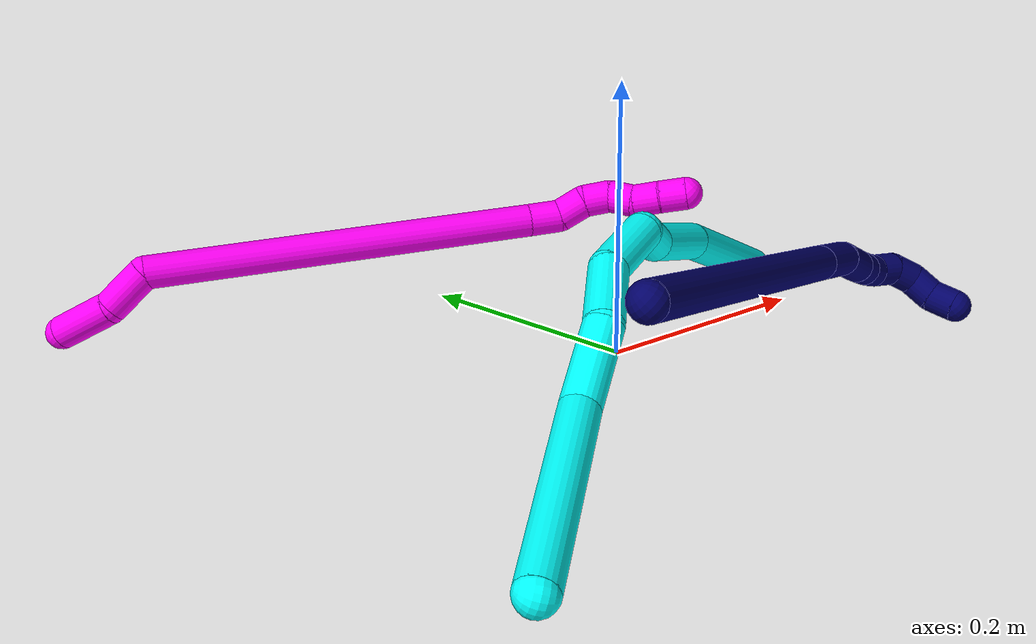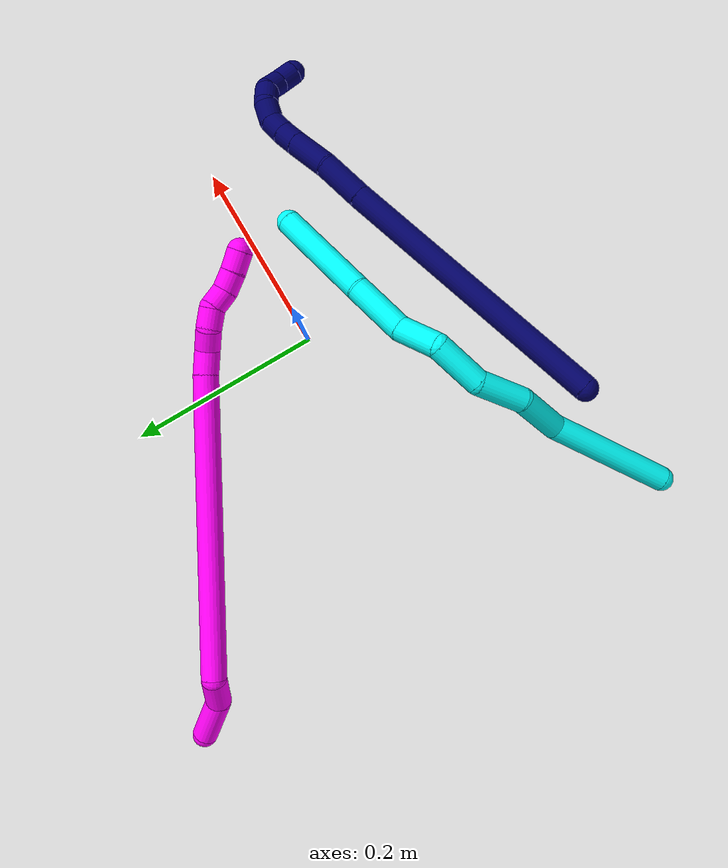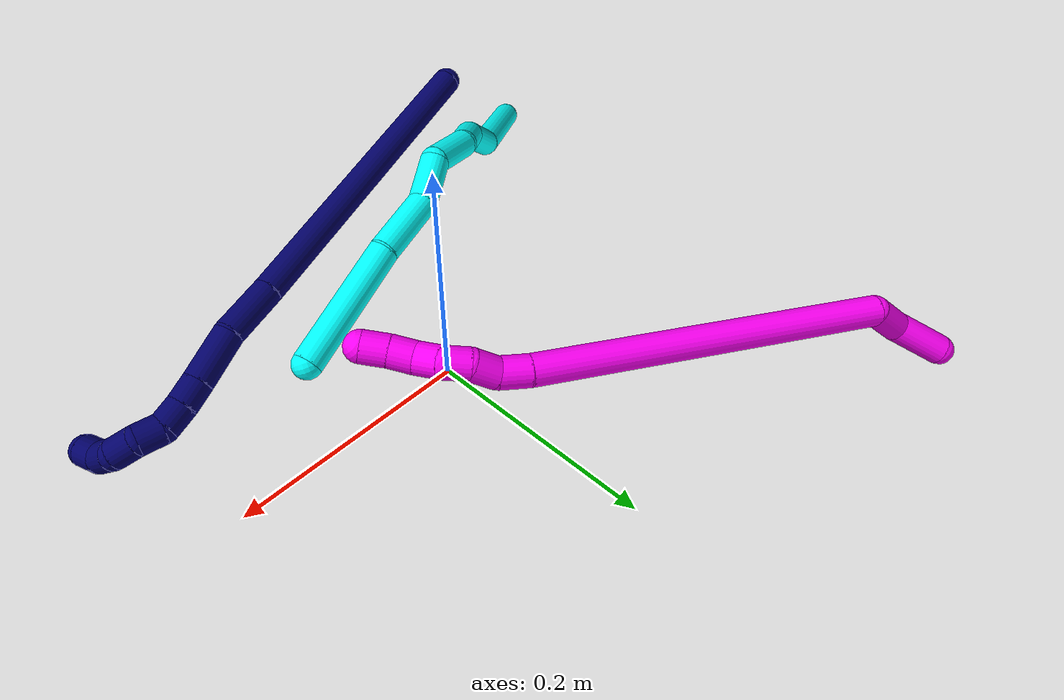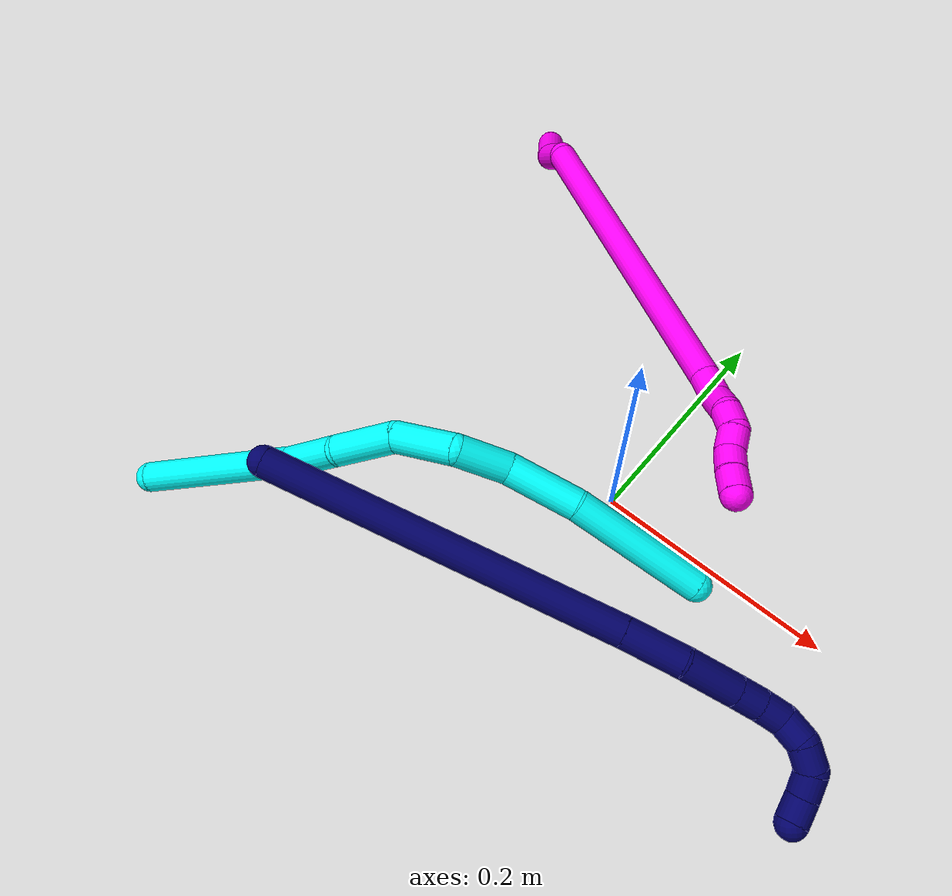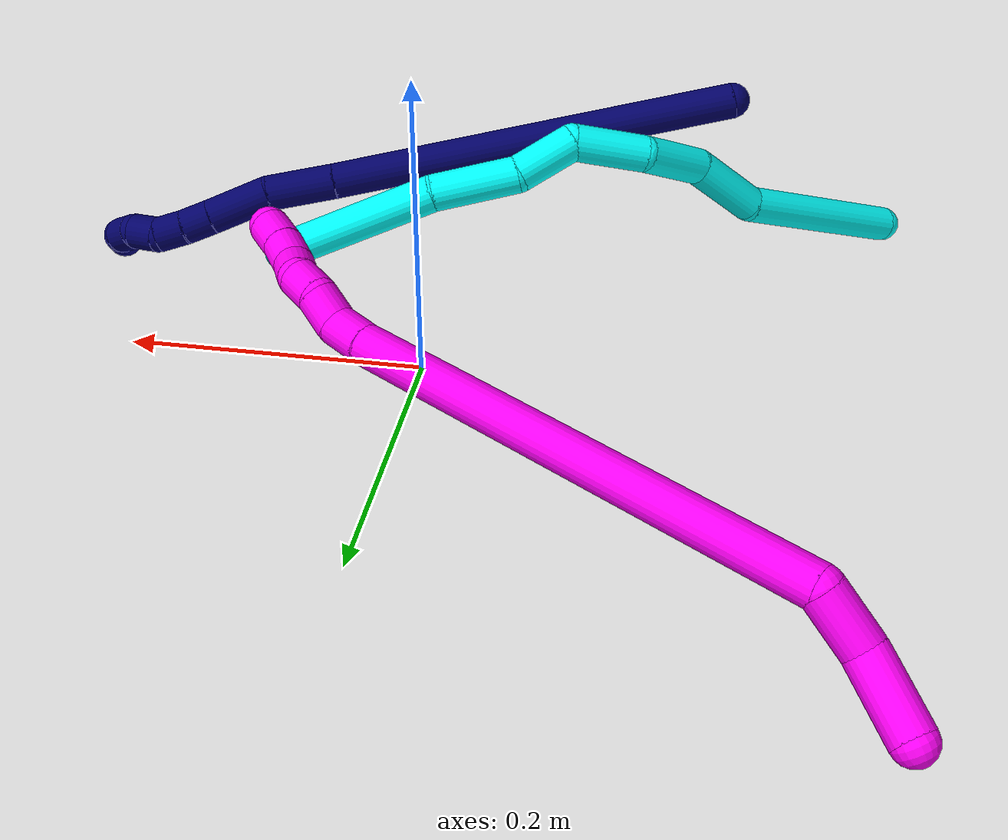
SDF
<sdf version="1.7">
 <world name="default">
  <model name="3">
   <static>0</static>
   <link name="3">
    <collision name="collision-cylinder-e_1_1_4">
     <pose>0.064072 0.015549 0.010611 -0.971942 1.28504 -0.752996</pose>
     <geometry><cylinder><radius>0.0125</radius><length>0.13356</length></cylinder></geometry>
     <surface>
      <friction><ode><mu>1.16</mu><mu2>1.16</mu2><slip1>0</slip1><slip2>0</slip2></ode></friction>
      <contact><ode><kp>1e+06</kp><kd>1</kd><max_vel>0</max_vel><min_depth>0.001</min_depth></ode></contact>
     </surface>
    </collision>
    <visual name="visual-cylinder-e_1_1_4">
     <pose>0.064072 0.015549 0.010611 -0.971942 1.28504 -0.752996</pose>
     <geometry><cylinder><radius>0.0125</radius><length>0.13356</length></cylinder></geometry>
     <material><ambient>0.003922 1 0.996078 1</ambient></material>
    </visual>
    <collision name="collision-cylinder-e_2_4_5">
     <pose>0.150495 0.046999 0.024985 -1.33848 0.939498 -0.7637</pose>
     <geometry><cylinder><radius>0.0125</radius><length>0.055376</length></cylinder></geometry>
     <surface>
      <friction><ode><mu>1.16</mu><mu2>1.16</mu2><slip1>0</slip1><slip2>0</slip2></ode></friction>
      <contact><ode><kp>1e+06</kp><kd>1</kd><max_vel>0</max_vel><min_depth>0.001</min_depth></ode></contact>
     </surface>
    </collision>
    <visual name="visual-cylinder-e_2_4_5">
     <pose>0.150495 0.046999 0.024985 -1.33848 0.939498 -0.7637</pose>
     <geometry><cylinder><radius>0.0125</radius><length>0.055376</length></cylinder></geometry>
     <material><ambient>0.003922 1 0.996078 1</ambient></material>
    </visual>
    <collision name="collision-cylinder-e_3_5_6">
     <pose>0.197225 0.069926 0.030225 -1.36341 1.28442 -1.09108</pose>
     <geometry><cylinder><radius>0.0125</radius><length>0.050827</length></cylinder></geometry>
     <surface>
      <friction><ode><mu>1.16</mu><mu2>1.16</mu2><slip1>0</slip1><slip2>0</slip2></ode></friction>
      <contact><ode><kp>1e+06</kp><kd>1</kd><max_vel>0</max_vel><min_depth>0.001</min_depth></ode></contact>
     </surface>
    </collision>
    <visual name="visual-cylinder-e_3_5_6">
     <pose>0.197225 0.069926 0.030225 -1.36341 1.28442 -1.09108</pose>
     <geometry><cylinder><radius>0.0125</radius><length>0.050827</length></cylinder></geometry>
     <material><ambient>0.003922 1 0.996078 1</ambient></material>
    </visual>
    <collision name="collision-cylinder-e_4_6_7">
     <pose>0.243614 0.082879 0.043072 -0.480654 1.04332 -0.279869</pose>
     <geometry><cylinder><radius>0.0125</radius><length>0.050943</length></cylinder></geometry>
     <surface>
      <friction><ode><mu>1.16</mu><mu2>1.16</mu2><slip1>0</slip1><slip2>0</slip2></ode></friction>
      <contact><ode><kp>1e+06</kp><kd>1</kd><max_vel>0</max_vel><min_depth>0.001</min_depth></ode></contact>
     </surface>
    </collision>
    <visual name="visual-cylinder-e_4_6_7">
     <pose>0.243614 0.082879 0.043072 -0.480654 1.04332 -0.279869</pose>
     <geometry><cylinder><radius>0.0125</radius><length>0.050943</length></cylinder></geometry>
     <material><ambient>0.003922 1 0.996078 1</ambient></material>
    </visual>
    <collision name="collision-cylinder-e_5_7_8">
     <pose>0.282528 0.079729 0.063444 0.789468 0.923239 0.408704</pose>
     <geometry><cylinder><radius>0.0125</radius><length>0.042391</length></cylinder></geometry>
     <surface>
      <friction><ode><mu>1.16</mu><mu2>1.16</mu2><slip1>0</slip1><slip2>0</slip2></ode></friction>
      <contact><ode><kp>1e+06</kp><kd>1</kd><max_vel>0</max_vel><min_depth>0.001</min_depth></ode></contact>
     </surface>
    </collision>
    <visual name="visual-cylinder-e_5_7_8">
     <pose>0.282528 0.079729 0.063444 0.789468 0.923239 0.408704</pose>
     <geometry><cylinder><radius>0.0125</radius><length>0.042391</length></cylinder></geometry>
     <material><ambient>0.003922 1 0.996078 1</ambient></material>
    </visual>
    <collision name="collision-cylinder-e_6_8_9">
     <pose>0.321437 0.066251 0.090669 0.23699 0.865226 0.109843</pose>
     <geometry><cylinder><radius>0.0125</radius><length>0.057811</length></cylinder></geometry>
     <surface>
      <friction><ode><mu>1.16</mu><mu2>1.16</mu2><slip1>0</slip1><slip2>0</slip2></ode></friction>
      <contact><ode><kp>1e+06</kp><kd>1</kd><max_vel>0</max_vel><min_depth>0.001</min_depth></ode></contact>
     </surface>
    </collision>
    <visual name="visual-cylinder-e_6_8_9">
     <pose>0.321437 0.066251 0.090669 0.23699 0.865226 0.109843</pose>
     <geometry><cylinder><radius>0.0125</radius><length>0.057811</length></cylinder></geometry>
     <material><ambient>0.003922 1 0.996078 1</ambient></material>
    </visual>
    <collision name="collision-cylinder-e_7_9_2">
     <pose>0.380244 0.044984 0.145445 0.432295 0.740587 0.17007</pose>
     <geometry><cylinder><radius>0.0125</radius><length>0.109091</length></cylinder></geometry>
     <surface>
      <friction><ode><mu>1.16</mu><mu2>1.16</mu2><slip1>0</slip1><slip2>0</slip2></ode></friction>
      <contact><ode><kp>1e+06</kp><kd>1</kd><max_vel>0</max_vel><min_depth>0.001</min_depth></ode></contact>
     </surface>
    </collision>
    <visual name="visual-cylinder-e_7_9_2">
     <pose>0.380244 0.044984 0.145445 0.432295 0.740587 0.17007</pose>
     <geometry><cylinder><radius>0.0125</radius><length>0.109091</length></cylinder></geometry>
     <material><ambient>0.003922 1 0.996078 1</ambient></material>
    </visual>
    <collision name="collision-sphere-2">
     <pose>0.417047 0.028117 0.182 0 -0 0</pose>
     <geometry><sphere><radius>0.0125</radius></sphere></geometry>
     <surface>
      <friction><ode><mu>1.16</mu><mu2>1.16</mu2><slip1>0</slip1><slip2>0</slip2></ode></friction>
      <contact><ode><kp>1e+06</kp><kd>1</kd><max_vel>0</max_vel><min_depth>0.001</min_depth></ode></contact>
     </surface>
    </collision>
    <visual name="visual-sphere-2">
     <pose>0.417047 0.028117 0.182 0 -0 0</pose>
     <geometry><sphere><radius>0.0125</radius></sphere></geometry>
     <material><ambient>0.003922 1 0.996078 1</ambient></material>
    </visual>
    <collision name="collision-sphere-9">
     <pose>0.343441 0.06185 0.10889 0 -0 0</pose>
     <geometry><sphere><radius>0.0125</radius></sphere></geometry>
     <surface>
      <friction><ode><mu>1.16</mu><mu2>1.16</mu2><slip1>0</slip1><slip2>0</slip2></ode></friction>
      <contact><ode><kp>1e+06</kp><kd>1</kd><max_vel>0</max_vel><min_depth>0.001</min_depth></ode></contact>
     </surface>
    </collision>
    <visual name="visual-sphere-9">
     <pose>0.343441 0.06185 0.10889 0 -0 0</pose>
     <geometry><sphere><radius>0.0125</radius></sphere></geometry>
     <material><ambient>0.003922 1 0.996078 1</ambient></material>
    </visual>
    <collision name="collision-sphere-4">
     <pose>0.128144 0.031097 0.021222 0 -0 0</pose>
     <geometry><sphere><radius>0.0125</radius></sphere></geometry>
     <surface>
      <friction><ode><mu>1.16</mu><mu2>1.16</mu2><slip1>0</slip1><slip2>0</slip2></ode></friction>
      <contact><ode><kp>1e+06</kp><kd>1</kd><max_vel>0</max_vel><min_depth>0.001</min_depth></ode></contact>
     </surface>
    </collision>
    <visual name="visual-sphere-4">
     <pose>0.128144 0.031097 0.021222 0 -0 0</pose>
     <geometry><sphere><radius>0.0125</radius></sphere></geometry>
     <material><ambient>0.003922 1 0.996078 1</ambient></material>
    </visual>
    <collision name="collision-sphere-1">
     <geometry><sphere><radius>0.0125</radius></sphere></geometry>
     <surface>
      <friction><ode><mu>1.16</mu><mu2>1.16</mu2><slip1>0</slip1><slip2>0</slip2></ode></friction>
      <contact><ode><kp>1e+06</kp><kd>1</kd><max_vel>0</max_vel><min_depth>0.001</min_depth></ode></contact>
     </surface>
    </collision>
    <visual name="visual-sphere-1">
     <geometry><sphere><radius>0.0125</radius></sphere></geometry>
     <material><ambient>0.003922 1 0.996078 1</ambient></material>
    </visual>
    <collision name="collision-sphere-8">
     <pose>0.299432 0.070652 0.072449 0 -0 0</pose>
     <geometry><sphere><radius>0.0125</radius></sphere></geometry>
     <surface>
      <friction><ode><mu>1.16</mu><mu2>1.16</mu2><slip1>0</slip1><slip2>0</slip2></ode></friction>
      <contact><ode><kp>1e+06</kp><kd>1</kd><max_vel>0</max_vel><min_depth>0.001</min_depth></ode></contact>
     </surface>
    </collision>
    <visual name="visual-sphere-8">
     <pose>0.299432 0.070652 0.072449 0 -0 0</pose>
     <geometry><sphere><radius>0.0125</radius></sphere></geometry>
     <material><ambient>0.003922 1 0.996078 1</ambient></material>
    </visual>
    <collision name="collision-sphere-5">
     <pose>0.172847 0.062902 0.028747 0 -0 0</pose>
     <geometry><sphere><radius>0.0125</radius></sphere></geometry>
     <surface>
      <friction><ode><mu>1.16</mu><mu2>1.16</mu2><slip1>0</slip1><slip2>0</slip2></ode></friction>
      <contact><ode><kp>1e+06</kp><kd>1</kd><max_vel>0</max_vel><min_depth>0.001</min_depth></ode></contact>
     </surface>
    </collision>
    <visual name="visual-sphere-5">
     <pose>0.172847 0.062902 0.028747 0 -0 0</pose>
     <geometry><sphere><radius>0.0125</radius></sphere></geometry>
     <material><ambient>0.003922 1 0.996078 1</ambient></material>
    </visual>
    <collision name="collision-sphere-6">
     <pose>0.221604 0.076951 0.031703 0 -0 0</pose>
     <geometry><sphere><radius>0.0125</radius></sphere></geometry>
     <surface>
      <friction><ode><mu>1.16</mu><mu2>1.16</mu2><slip1>0</slip1><slip2>0</slip2></ode></friction>
      <contact><ode><kp>1e+06</kp><kd>1</kd><max_vel>0</max_vel><min_depth>0.001</min_depth></ode></contact>
     </surface>
    </collision>
    <visual name="visual-sphere-6">
     <pose>0.221604 0.076951 0.031703 0 -0 0</pose>
     <geometry><sphere><radius>0.0125</radius></sphere></geometry>
     <material><ambient>0.003922 1 0.996078 1</ambient></material>
    </visual>
    <collision name="collision-sphere-7">
     <pose>0.265623 0.088807 0.05444 0 -0 0</pose>
     <geometry><sphere><radius>0.0125</radius></sphere></geometry>
     <surface>
      <friction><ode><mu>1.16</mu><mu2>1.16</mu2><slip1>0</slip1><slip2>0</slip2></ode></friction>
      <contact><ode><kp>1e+06</kp><kd>1</kd><max_vel>0</max_vel><min_depth>0.001</min_depth></ode></contact>
     </surface>
    </collision>
    <visual name="visual-sphere-7">
     <pose>0.265623 0.088807 0.05444 0 -0 0</pose>
     <geometry><sphere><radius>0.0125</radius></sphere></geometry>
     <material><ambient>0.003922 1 0.996078 1</ambient></material>
    </visual>
    <inertial>
     <pose>0.222734 0.049146 0.060658 0 -0 0</pose>
     <mass>0.5</mass>
     <inertia>
      <ixx>0.000154</ixx>
      <ixy>0</ixy>
      <ixz>0</ixz>
      <iyy>0.00033</iyy>
      <iyz>0</iyz>
      <izz>-0.000337</izz>
     </inertia>
    </inertial>
   </link>
   <pose>-0.307175 -0.236976 0.0115 1.86202 -0.16621 0.856982</pose>
  </model>
  <model name="7">
   <static>0</static>
   <link name="7">
    <collision name="collision-cylinder-e_1_1_4">
     <pose>0.106843 0.06375 0.072179 -0.723469 0.837246 -0.333575</pose>
     <geometry><cylinder><radius>0.0125</radius><length>0.287676</length></cylinder></geometry>
     <surface>
      <friction><ode><mu>1.16</mu><mu2>1.16</mu2><slip1>0</slip1><slip2>0</slip2></ode></friction>
      <contact><ode><kp>1e+06</kp><kd>1</kd><max_vel>0</max_vel><min_depth>0.001</min_depth></ode></contact>
     </surface>
    </collision>
    <visual name="visual-cylinder-e_1_1_4">
     <pose>0.106843 0.06375 0.072179 -0.723469 0.837246 -0.333575</pose>
     <geometry><cylinder><radius>0.0125</radius><length>0.287676</length></cylinder></geometry>
     <material><ambient>0.003922 0 0.403922 1</ambient></material>
    </visual>
    <collision name="collision-cylinder-e_2_4_5">
     <pose>0.230765 0.13845 0.156666 -0.72709 0.803435 -0.320478</pose>
     <geometry><cylinder><radius>0.0125</radius><length>0.047458</length></cylinder></geometry>
     <surface>
      <friction><ode><mu>1.16</mu><mu2>1.16</mu2><slip1>0</slip1><slip2>0</slip2></ode></friction>
      <contact><ode><kp>1e+06</kp><kd>1</kd><max_vel>0</max_vel><min_depth>0.001</min_depth></ode></contact>
     </surface>
    </collision>
    <visual name="visual-cylinder-e_2_4_5">
     <pose>0.230765 0.13845 0.156666 -0.72709 0.803435 -0.320478</pose>
     <geometry><cylinder><radius>0.0125</radius><length>0.047458</length></cylinder></geometry>
     <material><ambient>0.003922 0 0.403922 1</ambient></material>
    </visual>
    <collision name="collision-cylinder-e_3_5_6">
     <pose>0.264149 0.155254 0.182125 -0.418783 0.847518 -0.191134</pose>
     <geometry><cylinder><radius>0.0125</radius><length>0.043501</length></cylinder></geometry>
     <surface>
      <friction><ode><mu>1.16</mu><mu2>1.16</mu2><slip1>0</slip1><slip2>0</slip2></ode></friction>
      <contact><ode><kp>1e+06</kp><kd>1</kd><max_vel>0</max_vel><min_depth>0.001</min_depth></ode></contact>
     </surface>
    </collision>
    <visual name="visual-cylinder-e_3_5_6">
     <pose>0.264149 0.155254 0.182125 -0.418783 0.847518 -0.191134</pose>
     <geometry><cylinder><radius>0.0125</radius><length>0.043501</length></cylinder></geometry>
     <material><ambient>0.003922 0 0.403922 1</ambient></material>
    </visual>
    <collision name="collision-cylinder-e_4_6_7">
     <pose>0.288048 0.164128 0.201575 -0.447112 0.827158 -0.198911</pose>
     <geometry><cylinder><radius>0.0125</radius><length>0.020636</length></cylinder></geometry>
     <surface>
      <friction><ode><mu>1.16</mu><mu2>1.16</mu2><slip1>0</slip1><slip2>0</slip2></ode></friction>
      <contact><ode><kp>1e+06</kp><kd>1</kd><max_vel>0</max_vel><min_depth>0.001</min_depth></ode></contact>
     </surface>
    </collision>
    <visual name="visual-cylinder-e_4_6_7">
     <pose>0.288048 0.164128 0.201575 -0.447112 0.827158 -0.198911</pose>
     <geometry><cylinder><radius>0.0125</radius><length>0.020636</length></cylinder></geometry>
     <material><ambient>0.003922 0 0.403922 1</ambient></material>
    </visual>
    <collision name="collision-cylinder-e_5_7_8">
     <pose>0.302544 0.170897 0.214265 -0.530456 0.749883 -0.212994</pose>
     <geometry><cylinder><radius>0.0125</radius><length>0.020253</length></cylinder></geometry>
     <surface>
      <friction><ode><mu>1.16</mu><mu2>1.16</mu2><slip1>0</slip1><slip2>0</slip2></ode></friction>
      <contact><ode><kp>1e+06</kp><kd>1</kd><max_vel>0</max_vel><min_depth>0.001</min_depth></ode></contact>
     </surface>
    </collision>
    <visual name="visual-cylinder-e_5_7_8">
     <pose>0.302544 0.170897 0.214265 -0.530456 0.749883 -0.212994</pose>
     <geometry><cylinder><radius>0.0125</radius><length>0.020253</length></cylinder></geometry>
     <material><ambient>0.003922 0 0.403922 1</ambient></material>
    </visual>
    <collision name="collision-cylinder-e_6_8_9">
     <pose>0.312481 0.181293 0.2275 -0.770873 0.308066 -0.125823</pose>
     <geometry><cylinder><radius>0.0125</radius><length>0.020021</length></cylinder></geometry>
     <surface>
      <friction><ode><mu>1.16</mu><mu2>1.16</mu2><slip1>0</slip1><slip2>0</slip2></ode></friction>
      <contact><ode><kp>1e+06</kp><kd>1</kd><max_vel>0</max_vel><min_depth>0.001</min_depth></ode></contact>
     </surface>
    </collision>
    <visual name="visual-cylinder-e_6_8_9">
     <pose>0.312481 0.181293 0.2275 -0.770873 0.308066 -0.125823</pose>
     <geometry><cylinder><radius>0.0125</radius><length>0.020021</length></cylinder></geometry>
     <material><ambient>0.003922 0 0.403922 1</ambient></material>
    </visual>
    <collision name="collision-cylinder-e_7_9_10">
     <pose>0.316322 0.190923 0.243884 -0.303032 0.080362 -0.012277</pose>
     <geometry><cylinder><radius>0.0125</radius><length>0.020059</length></cylinder></geometry>
     <surface>
      <friction><ode><mu>1.16</mu><mu2>1.16</mu2><slip1>0</slip1><slip2>0</slip2></ode></friction>
      <contact><ode><kp>1e+06</kp><kd>1</kd><max_vel>0</max_vel><min_depth>0.001</min_depth></ode></contact>
     </surface>
    </collision>
    <visual name="visual-cylinder-e_7_9_10">
     <pose>0.316322 0.190923 0.243884 -0.303032 0.080362 -0.012277</pose>
     <geometry><cylinder><radius>0.0125</radius><length>0.020059</length></cylinder></geometry>
     <material><ambient>0.003922 0 0.403922 1</ambient></material>
    </visual>
    <collision name="collision-cylinder-e_8_10_11">
     <pose>0.312941 0.193395 0.262637 0.055455 -0.425967 -0.011996</pose>
     <geometry><cylinder><radius>0.0125</radius><length>0.020261</length></cylinder></geometry>
     <surface>
      <friction><ode><mu>1.16</mu><mu2>1.16</mu2><slip1>0</slip1><slip2>0</slip2></ode></friction>
      <contact><ode><kp>1e+06</kp><kd>1</kd><max_vel>0</max_vel><min_depth>0.001</min_depth></ode></contact>
     </surface>
    </collision>
    <visual name="visual-cylinder-e_8_10_11">
     <pose>0.312941 0.193395 0.262637 0.055455 -0.425967 -0.011996</pose>
     <geometry><cylinder><radius>0.0125</radius><length>0.020261</length></cylinder></geometry>
     <material><ambient>0.003922 0 0.403922 1</ambient></material>
    </visual>
    <collision name="collision-cylinder-e_9_11_2">
     <pose>0.302018 0.194756 0.27909 -0.252945 -0.733189 0.097562</pose>
     <geometry><cylinder><radius>0.0125</radius><length>0.020134</length></cylinder></geometry>
     <surface>
      <friction><ode><mu>1.16</mu><mu2>1.16</mu2><slip1>0</slip1><slip2>0</slip2></ode></friction>
      <contact><ode><kp>1e+06</kp><kd>1</kd><max_vel>0</max_vel><min_depth>0.001</min_depth></ode></contact>
     </surface>
    </collision>
    <visual name="visual-cylinder-e_9_11_2">
     <pose>0.302018 0.194756 0.27909 -0.252945 -0.733189 0.097562</pose>
     <geometry><cylinder><radius>0.0125</radius><length>0.020134</length></cylinder></geometry>
     <material><ambient>0.003922 0 0.403922 1</ambient></material>
    </visual>
    <collision name="collision-sphere-2">
     <pose>0.29528 0.196628 0.286332 0 -0 0</pose>
     <geometry><sphere><radius>0.0125</radius></sphere></geometry>
     <surface>
      <friction><ode><mu>1.16</mu><mu2>1.16</mu2><slip1>0</slip1><slip2>0</slip2></ode></friction>
      <contact><ode><kp>1e+06</kp><kd>1</kd><max_vel>0</max_vel><min_depth>0.001</min_depth></ode></contact>
     </surface>
    </collision>
    <visual name="visual-sphere-2">
     <pose>0.29528 0.196628 0.286332 0 -0 0</pose>
     <geometry><sphere><radius>0.0125</radius></sphere></geometry>
     <material><ambient>0.003922 0 0.403922 1</ambient></material>
    </visual>
    <collision name="collision-sphere-11">
     <pose>0.308755 0.192884 0.271848 0 -0 0</pose>
     <geometry><sphere><radius>0.0125</radius></sphere></geometry>
     <surface>
      <friction><ode><mu>1.16</mu><mu2>1.16</mu2><slip1>0</slip1><slip2>0</slip2></ode></friction>
      <contact><ode><kp>1e+06</kp><kd>1</kd><max_vel>0</max_vel><min_depth>0.001</min_depth></ode></contact>
     </surface>
    </collision>
    <visual name="visual-sphere-11">
     <pose>0.308755 0.192884 0.271848 0 -0 0</pose>
     <geometry><sphere><radius>0.0125</radius></sphere></geometry>
     <material><ambient>0.003922 0 0.403922 1</ambient></material>
    </visual>
    <collision name="collision-sphere-10">
     <pose>0.317127 0.193906 0.253425 0 -0 0</pose>
     <geometry><sphere><radius>0.0125</radius></sphere></geometry>
     <surface>
      <friction><ode><mu>1.16</mu><mu2>1.16</mu2><slip1>0</slip1><slip2>0</slip2></ode></friction>
      <contact><ode><kp>1e+06</kp><kd>1</kd><max_vel>0</max_vel><min_depth>0.001</min_depth></ode></contact>
     </surface>
    </collision>
    <visual name="visual-sphere-10">
     <pose>0.317127 0.193906 0.253425 0 -0 0</pose>
     <geometry><sphere><radius>0.0125</radius></sphere></geometry>
     <material><ambient>0.003922 0 0.403922 1</ambient></material>
    </visual>
    <collision name="collision-sphere-9">
     <pose>0.315517 0.18794 0.234342 0 -0 0</pose>
     <geometry><sphere><radius>0.0125</radius></sphere></geometry>
     <surface>
      <friction><ode><mu>1.16</mu><mu2>1.16</mu2><slip1>0</slip1><slip2>0</slip2></ode></friction>
      <contact><ode><kp>1e+06</kp><kd>1</kd><max_vel>0</max_vel><min_depth>0.001</min_depth></ode></contact>
     </surface>
    </collision>
    <visual name="visual-sphere-9">
     <pose>0.315517 0.18794 0.234342 0 -0 0</pose>
     <geometry><sphere><radius>0.0125</radius></sphere></geometry>
     <material><ambient>0.003922 0 0.403922 1</ambient></material>
    </visual>
    <collision name="collision-sphere-4">
     <pose>0.213686 0.1275 0.144358 0 -0 0</pose>
     <geometry><sphere><radius>0.0125</radius></sphere></geometry>
     <surface>
      <friction><ode><mu>1.16</mu><mu2>1.16</mu2><slip1>0</slip1><slip2>0</slip2></ode></friction>
      <contact><ode><kp>1e+06</kp><kd>1</kd><max_vel>0</max_vel><min_depth>0.001</min_depth></ode></contact>
     </surface>
    </collision>
    <visual name="visual-sphere-4">
     <pose>0.213686 0.1275 0.144358 0 -0 0</pose>
     <geometry><sphere><radius>0.0125</radius></sphere></geometry>
     <material><ambient>0.003922 0 0.403922 1</ambient></material>
    </visual>
    <collision name="collision-sphere-1">
     <geometry><sphere><radius>0.0125</radius></sphere></geometry>
     <surface>
      <friction><ode><mu>1.16</mu><mu2>1.16</mu2><slip1>0</slip1><slip2>0</slip2></ode></friction>
      <contact><ode><kp>1e+06</kp><kd>1</kd><max_vel>0</max_vel><min_depth>0.001</min_depth></ode></contact>
     </surface>
    </collision>
    <visual name="visual-sphere-1">
     <geometry><sphere><radius>0.0125</radius></sphere></geometry>
     <material><ambient>0.003922 0 0.403922 1</ambient></material>
    </visual>
    <collision name="collision-sphere-8">
     <pose>0.309446 0.174647 0.220657 0 -0 0</pose>
     <geometry><sphere><radius>0.0125</radius></sphere></geometry>
     <surface>
      <friction><ode><mu>1.16</mu><mu2>1.16</mu2><slip1>0</slip1><slip2>0</slip2></ode></friction>
      <contact><ode><kp>1e+06</kp><kd>1</kd><max_vel>0</max_vel><min_depth>0.001</min_depth></ode></contact>
     </surface>
    </collision>
    <visual name="visual-sphere-8">
     <pose>0.309446 0.174647 0.220657 0 -0 0</pose>
     <geometry><sphere><radius>0.0125</radius></sphere></geometry>
     <material><ambient>0.003922 0 0.403922 1</ambient></material>
    </visual>
    <collision name="collision-sphere-5">
     <pose>0.247844 0.1494 0.168973 0 -0 0</pose>
     <geometry><sphere><radius>0.0125</radius></sphere></geometry>
     <surface>
      <friction><ode><mu>1.16</mu><mu2>1.16</mu2><slip1>0</slip1><slip2>0</slip2></ode></friction>
      <contact><ode><kp>1e+06</kp><kd>1</kd><max_vel>0</max_vel><min_depth>0.001</min_depth></ode></contact>
     </surface>
    </collision>
    <visual name="visual-sphere-5">
     <pose>0.247844 0.1494 0.168973 0 -0 0</pose>
     <geometry><sphere><radius>0.0125</radius></sphere></geometry>
     <material><ambient>0.003922 0 0.403922 1</ambient></material>
    </visual>
    <collision name="collision-sphere-6">
     <pose>0.280454 0.161108 0.195276 0 -0 0</pose>
     <geometry><sphere><radius>0.0125</radius></sphere></geometry>
     <surface>
      <friction><ode><mu>1.16</mu><mu2>1.16</mu2><slip1>0</slip1><slip2>0</slip2></ode></friction>
      <contact><ode><kp>1e+06</kp><kd>1</kd><max_vel>0</max_vel><min_depth>0.001</min_depth></ode></contact>
     </surface>
    </collision>
    <visual name="visual-sphere-6">
     <pose>0.280454 0.161108 0.195276 0 -0 0</pose>
     <geometry><sphere><radius>0.0125</radius></sphere></geometry>
     <material><ambient>0.003922 0 0.403922 1</ambient></material>
    </visual>
    <collision name="collision-sphere-7">
     <pose>0.295642 0.167148 0.207873 0 -0 0</pose>
     <geometry><sphere><radius>0.0125</radius></sphere></geometry>
     <surface>
      <friction><ode><mu>1.16</mu><mu2>1.16</mu2><slip1>0</slip1><slip2>0</slip2></ode></friction>
      <contact><ode><kp>1e+06</kp><kd>1</kd><max_vel>0</max_vel><min_depth>0.001</min_depth></ode></contact>
     </surface>
    </collision>
    <visual name="visual-sphere-7">
     <pose>0.295642 0.167148 0.207873 0 -0 0</pose>
     <geometry><sphere><radius>0.0125</radius></sphere></geometry>
     <material><ambient>0.003922 0 0.403922 1</ambient></material>
    </visual>
    <inertial>
     <pose>0.180546 0.107622 0.130017 0 -0 0</pose>
     <mass>0.5</mass>
     <inertia>
      <ixx>0.000864</ixx>
      <ixy>0</ixy>
      <ixz>0</ixz>
      <iyy>0.001334</iyy>
      <iyz>0</iyz>
      <izz>-0.002369</izz>
     </inertia>
    </inertial>
   </link>
   <pose>-0.186744 -0.195484 0.120624 2.34359 0.170573 1.0356</pose>
  </model>
  <model name="10">
   <static>0</static>
   <link name="10">
    <collision name="collision-cylinder-e_1_1_4">
     <pose>0.005996 0.004595 -0.021578 -2.93178 0.265371 -1.80573</pose>
     <geometry><cylinder><radius>0.0125</radius><length>0.045725</length></cylinder></geometry>
     <surface>
      <friction><ode><mu>1.16</mu><mu2>1.16</mu2><slip1>0</slip1><slip2>0</slip2></ode></friction>
      <contact><ode><kp>1e+06</kp><kd>1</kd><max_vel>0</max_vel><min_depth>0.001</min_depth></ode></contact>
     </surface>
    </collision>
    <visual name="visual-cylinder-e_1_1_4">
     <pose>0.005996 0.004595 -0.021578 -2.93178 0.265371 -1.80573</pose>
     <geometry><cylinder><radius>0.0125</radius><length>0.045725</length></cylinder></geometry>
     <material><ambient>1 0 0.964706 1</ambient></material>
    </visual>
    <collision name="collision-cylinder-e_2_4_5">
     <pose>0.012696 0.00587 -0.060572 2.95321 0.039712 0.41439</pose>
     <geometry><cylinder><radius>0.0125</radius><length>0.035486</length></cylinder></geometry>
     <surface>
      <friction><ode><mu>1.16</mu><mu2>1.16</mu2><slip1>0</slip1><slip2>0</slip2></ode></friction>
      <contact><ode><kp>1e+06</kp><kd>1</kd><max_vel>0</max_vel><min_depth>0.001</min_depth></ode></contact>
     </surface>
    </collision>
    <visual name="visual-cylinder-e_2_4_5">
     <pose>0.012696 0.00587 -0.060572 2.95321 0.039712 0.41439</pose>
     <geometry><cylinder><radius>0.0125</radius><length>0.035486</length></cylinder></geometry>
     <material><ambient>1 0 0.964706 1</ambient></material>
    </visual>
    <collision name="collision-cylinder-e_3_5_6">
     <pose>0.110171 -0.02193 -0.184178 2.91502 0.726142 2.55965</pose>
     <geometry><cylinder><radius>0.0125</radius><length>0.29148</length></cylinder></geometry>
     <surface>
      <friction><ode><mu>1.16</mu><mu2>1.16</mu2><slip1>0</slip1><slip2>0</slip2></ode></friction>
      <contact><ode><kp>1e+06</kp><kd>1</kd><max_vel>0</max_vel><min_depth>0.001</min_depth></ode></contact>
     </surface>
    </collision>
    <visual name="visual-cylinder-e_3_5_6">
     <pose>0.110171 -0.02193 -0.184178 2.91502 0.726142 2.55965</pose>
     <geometry><cylinder><radius>0.0125</radius><length>0.29148</length></cylinder></geometry>
     <material><ambient>1 0 0.964706 1</ambient></material>
    </visual>
    <collision name="collision-cylinder-e_4_6_7">
     <pose>0.214747 -0.047331 -0.299735 3.04365 0.692409 2.87151</pose>
     <geometry><cylinder><radius>0.0125</radius><length>0.024454</length></cylinder></geometry>
     <surface>
      <friction><ode><mu>1.16</mu><mu2>1.16</mu2><slip1>0</slip1><slip2>0</slip2></ode></friction>
      <contact><ode><kp>1e+06</kp><kd>1</kd><max_vel>0</max_vel><min_depth>0.001</min_depth></ode></contact>
     </surface>
    </collision>
    <visual name="visual-cylinder-e_4_6_7">
     <pose>0.214747 -0.047331 -0.299735 3.04365 0.692409 2.87151</pose>
     <geometry><cylinder><radius>0.0125</radius><length>0.024454</length></cylinder></geometry>
     <material><ambient>1 0 0.964706 1</ambient></material>
    </visual>
    <collision name="collision-cylinder-e_5_7_8">
     <pose>0.225306 -0.048582 -0.319637 3.11021 0.255534 2.89852</pose>
     <geometry><cylinder><radius>0.0125</radius><length>0.021789</length></cylinder></geometry>
     <surface>
      <friction><ode><mu>1.16</mu><mu2>1.16</mu2><slip1>0</slip1><slip2>0</slip2></ode></friction>
      <contact><ode><kp>1e+06</kp><kd>1</kd><max_vel>0</max_vel><min_depth>0.001</min_depth></ode></contact>
     </surface>
    </collision>
    <visual name="visual-cylinder-e_5_7_8">
     <pose>0.225306 -0.048582 -0.319637 3.11021 0.255534 2.89852</pose>
     <geometry><cylinder><radius>0.0125</radius><length>0.021789</length></cylinder></geometry>
     <material><ambient>1 0 0.964706 1</ambient></material>
    </visual>
    <collision name="collision-cylinder-e_6_8_9">
     <pose>0.233885 -0.048571 -0.338513 -3.10068 0.609286 -3.01165</pose>
     <geometry><cylinder><radius>0.0125</radius><length>0.020358</length></cylinder></geometry>
     <surface>
      <friction><ode><mu>1.16</mu><mu2>1.16</mu2><slip1>0</slip1><slip2>0</slip2></ode></friction>
      <contact><ode><kp>1e+06</kp><kd>1</kd><max_vel>0</max_vel><min_depth>0.001</min_depth></ode></contact>
     </surface>
    </collision>
    <visual name="visual-cylinder-e_6_8_9">
     <pose>0.233885 -0.048571 -0.338513 -3.10068 0.609286 -3.01165</pose>
     <geometry><cylinder><radius>0.0125</radius><length>0.020358</length></cylinder></geometry>
     <material><ambient>1 0 0.964706 1</ambient></material>
    </visual>
    <collision name="collision-cylinder-e_7_9_10">
     <pose>0.246542 -0.043567 -0.352547 -2.45536 0.748202 -1.665</pose>
     <geometry><cylinder><radius>0.0125</radius><length>0.020082</length></cylinder></geometry>
     <surface>
      <friction><ode><mu>1.16</mu><mu2>1.16</mu2><slip1>0</slip1><slip2>0</slip2></ode></friction>
      <contact><ode><kp>1e+06</kp><kd>1</kd><max_vel>0</max_vel><min_depth>0.001</min_depth></ode></contact>
     </surface>
    </collision>
    <visual name="visual-cylinder-e_7_9_10">
     <pose>0.246542 -0.043567 -0.352547 -2.45536 0.748202 -1.665</pose>
     <geometry><cylinder><radius>0.0125</radius><length>0.020082</length></cylinder></geometry>
     <material><ambient>1 0 0.964706 1</ambient></material>
    </visual>
    <collision name="collision-cylinder-e_8_10_11">
     <pose>0.258548 -0.03626 -0.366421 -2.82897 0.541793 -2.10929</pose>
     <geometry><cylinder><radius>0.0125</radius><length>0.020071</length></cylinder></geometry>
     <surface>
      <friction><ode><mu>1.16</mu><mu2>1.16</mu2><slip1>0</slip1><slip2>0</slip2></ode></friction>
      <contact><ode><kp>1e+06</kp><kd>1</kd><max_vel>0</max_vel><min_depth>0.001</min_depth></ode></contact>
     </surface>
    </collision>
    <visual name="visual-cylinder-e_8_10_11">
     <pose>0.258548 -0.03626 -0.366421 -2.82897 0.541793 -2.10929</pose>
     <geometry><cylinder><radius>0.0125</radius><length>0.020071</length></cylinder></geometry>
     <material><ambient>1 0 0.964706 1</ambient></material>
    </visual>
    <collision name="collision-cylinder-e_9_11_2">
     <pose>0.269555 -0.031795 -0.382867 -2.92484 0.603471 -2.46898</pose>
     <geometry><cylinder><radius>0.0125</radius><length>0.020555</length></cylinder></geometry>
     <surface>
      <friction><ode><mu>1.16</mu><mu2>1.16</mu2><slip1>0</slip1><slip2>0</slip2></ode></friction>
      <contact><ode><kp>1e+06</kp><kd>1</kd><max_vel>0</max_vel><min_depth>0.001</min_depth></ode></contact>
     </surface>
    </collision>
    <visual name="visual-cylinder-e_9_11_2">
     <pose>0.269555 -0.031795 -0.382867 -2.92484 0.603471 -2.46898</pose>
     <geometry><cylinder><radius>0.0125</radius><length>0.020555</length></cylinder></geometry>
     <material><ambient>1 0 0.964706 1</ambient></material>
    </visual>
    <collision name="collision-sphere-2">
     <pose>0.275388 -0.029976 -0.391131 0 -0 0</pose>
     <geometry><sphere><radius>0.0125</radius></sphere></geometry>
     <surface>
      <friction><ode><mu>1.16</mu><mu2>1.16</mu2><slip1>0</slip1><slip2>0</slip2></ode></friction>
      <contact><ode><kp>1e+06</kp><kd>1</kd><max_vel>0</max_vel><min_depth>0.001</min_depth></ode></contact>
     </surface>
    </collision>
    <visual name="visual-sphere-2">
     <pose>0.275388 -0.029976 -0.391131 0 -0 0</pose>
     <geometry><sphere><radius>0.0125</radius></sphere></geometry>
     <material><ambient>1 0 0.964706 1</ambient></material>
    </visual>
    <collision name="collision-sphere-11">
     <pose>0.263723 -0.033615 -0.374603 0 -0 0</pose>
     <geometry><sphere><radius>0.0125</radius></sphere></geometry>
     <surface>
      <friction><ode><mu>1.16</mu><mu2>1.16</mu2><slip1>0</slip1><slip2>0</slip2></ode></friction>
      <contact><ode><kp>1e+06</kp><kd>1</kd><max_vel>0</max_vel><min_depth>0.001</min_depth></ode></contact>
     </surface>
    </collision>
    <visual name="visual-sphere-11">
     <pose>0.263723 -0.033615 -0.374603 0 -0 0</pose>
     <geometry><sphere><radius>0.0125</radius></sphere></geometry>
     <material><ambient>1 0 0.964706 1</ambient></material>
    </visual>
    <collision name="collision-sphere-10">
     <pose>0.253373 -0.038904 -0.35824 0 -0 0</pose>
     <geometry><sphere><radius>0.0125</radius></sphere></geometry>
     <surface>
      <friction><ode><mu>1.16</mu><mu2>1.16</mu2><slip1>0</slip1><slip2>0</slip2></ode></friction>
      <contact><ode><kp>1e+06</kp><kd>1</kd><max_vel>0</max_vel><min_depth>0.001</min_depth></ode></contact>
     </surface>
    </collision>
    <visual name="visual-sphere-10">
     <pose>0.253373 -0.038904 -0.35824 0 -0 0</pose>
     <geometry><sphere><radius>0.0125</radius></sphere></geometry>
     <material><ambient>1 0 0.964706 1</ambient></material>
    </visual>
    <collision name="collision-sphere-9">
     <pose>0.23971 -0.04823 -0.346853 0 -0 0</pose>
     <geometry><sphere><radius>0.0125</radius></sphere></geometry>
     <surface>
      <friction><ode><mu>1.16</mu><mu2>1.16</mu2><slip1>0</slip1><slip2>0</slip2></ode></friction>
      <contact><ode><kp>1e+06</kp><kd>1</kd><max_vel>0</max_vel><min_depth>0.001</min_depth></ode></contact>
     </surface>
    </collision>
    <visual name="visual-sphere-9">
     <pose>0.23971 -0.04823 -0.346853 0 -0 0</pose>
     <geometry><sphere><radius>0.0125</radius></sphere></geometry>
     <material><ambient>1 0 0.964706 1</ambient></material>
    </visual>
    <collision name="collision-sphere-4">
     <pose>0.011992 0.00919 -0.043156 0 -0 0</pose>
     <geometry><sphere><radius>0.0125</radius></sphere></geometry>
     <surface>
      <friction><ode><mu>1.16</mu><mu2>1.16</mu2><slip1>0</slip1><slip2>0</slip2></ode></friction>
      <contact><ode><kp>1e+06</kp><kd>1</kd><max_vel>0</max_vel><min_depth>0.001</min_depth></ode></contact>
     </surface>
    </collision>
    <visual name="visual-sphere-4">
     <pose>0.011992 0.00919 -0.043156 0 -0 0</pose>
     <geometry><sphere><radius>0.0125</radius></sphere></geometry>
     <material><ambient>1 0 0.964706 1</ambient></material>
    </visual>
    <collision name="collision-sphere-1">
     <geometry><sphere><radius>0.0125</radius></sphere></geometry>
     <surface>
      <friction><ode><mu>1.16</mu><mu2>1.16</mu2><slip1>0</slip1><slip2>0</slip2></ode></friction>
      <contact><ode><kp>1e+06</kp><kd>1</kd><max_vel>0</max_vel><min_depth>0.001</min_depth></ode></contact>
     </surface>
    </collision>
    <visual name="visual-sphere-1">
     <geometry><sphere><radius>0.0125</radius></sphere></geometry>
     <material><ambient>1 0 0.964706 1</ambient></material>
    </visual>
    <collision name="collision-sphere-8">
     <pose>0.22806 -0.048913 -0.330172 0 -0 0</pose>
     <geometry><sphere><radius>0.0125</radius></sphere></geometry>
     <surface>
      <friction><ode><mu>1.16</mu><mu2>1.16</mu2><slip1>0</slip1><slip2>0</slip2></ode></friction>
      <contact><ode><kp>1e+06</kp><kd>1</kd><max_vel>0</max_vel><min_depth>0.001</min_depth></ode></contact>
     </surface>
    </collision>
    <visual name="visual-sphere-8">
     <pose>0.22806 -0.048913 -0.330172 0 -0 0</pose>
     <geometry><sphere><radius>0.0125</radius></sphere></geometry>
     <material><ambient>1 0 0.964706 1</ambient></material>
    </visual>
    <collision name="collision-sphere-5">
     <pose>0.013401 0.00255 -0.077987 0 -0 0</pose>
     <geometry><sphere><radius>0.0125</radius></sphere></geometry>
     <surface>
      <friction><ode><mu>1.16</mu><mu2>1.16</mu2><slip1>0</slip1><slip2>0</slip2></ode></friction>
      <contact><ode><kp>1e+06</kp><kd>1</kd><max_vel>0</max_vel><min_depth>0.001</min_depth></ode></contact>
     </surface>
    </collision>
    <visual name="visual-sphere-5">
     <pose>0.013401 0.00255 -0.077987 0 -0 0</pose>
     <geometry><sphere><radius>0.0125</radius></sphere></geometry>
     <material><ambient>1 0 0.964706 1</ambient></material>
    </visual>
    <collision name="collision-sphere-6">
     <pose>0.206941 -0.046411 -0.290368 0 -0 0</pose>
     <geometry><sphere><radius>0.0125</radius></sphere></geometry>
     <surface>
      <friction><ode><mu>1.16</mu><mu2>1.16</mu2><slip1>0</slip1><slip2>0</slip2></ode></friction>
      <contact><ode><kp>1e+06</kp><kd>1</kd><max_vel>0</max_vel><min_depth>0.001</min_depth></ode></contact>
     </surface>
    </collision>
    <visual name="visual-sphere-6">
     <pose>0.206941 -0.046411 -0.290368 0 -0 0</pose>
     <geometry><sphere><radius>0.0125</radius></sphere></geometry>
     <material><ambient>1 0 0.964706 1</ambient></material>
    </visual>
    <collision name="collision-sphere-7">
     <pose>0.222552 -0.048251 -0.309101 0 -0 0</pose>
     <geometry><sphere><radius>0.0125</radius></sphere></geometry>
     <surface>
      <friction><ode><mu>1.16</mu><mu2>1.16</mu2><slip1>0</slip1><slip2>0</slip2></ode></friction>
      <contact><ode><kp>1e+06</kp><kd>1</kd><max_vel>0</max_vel><min_depth>0.001</min_depth></ode></contact>
     </surface>
    </collision>
    <visual name="visual-sphere-7">
     <pose>0.222552 -0.048251 -0.309101 0 -0 0</pose>
     <geometry><sphere><radius>0.0125</radius></sphere></geometry>
     <material><ambient>1 0 0.964706 1</ambient></material>
    </visual>
    <inertial>
     <pose>0.126881 -0.02287 -0.20062 0 -0 0</pose>
     <mass>0.5</mass>
     <inertia>
      <ixx>-0.000435</ixx>
      <ixy>0</ixy>
      <ixz>0</ixz>
      <iyy>0.002707</iyy>
      <iyz>0</iyz>
      <izz>-0.00107</izz>
     </inertia>
    </inertial>
   </link>
   <pose>-0.292139 0.288247 0.011903 -3.01634 0.764684 -0.581315</pose>
  </model>
 </world>
</sdf>
